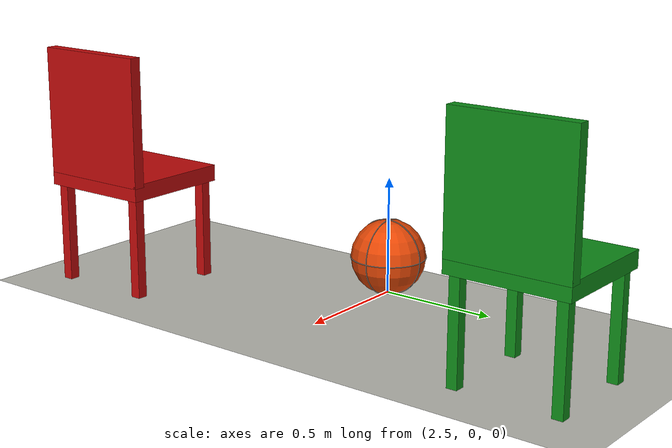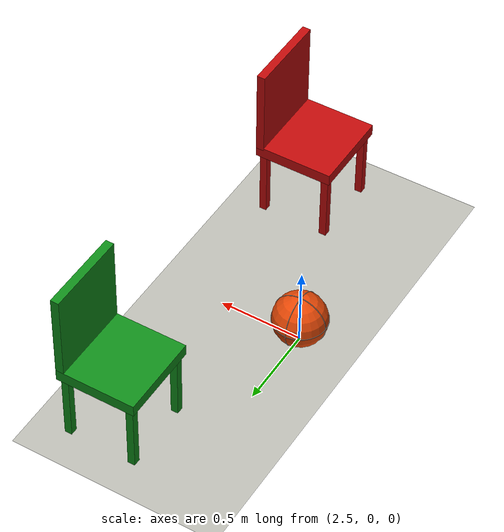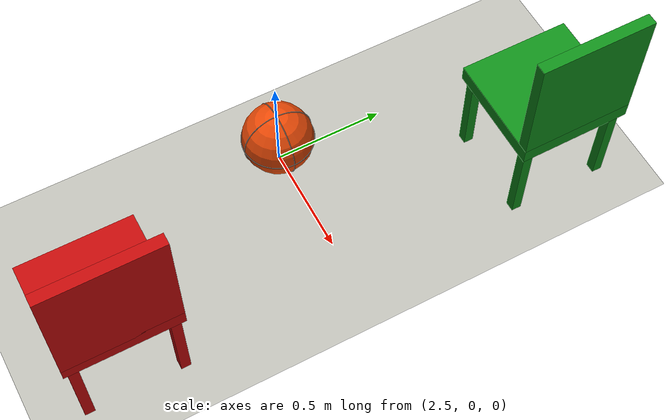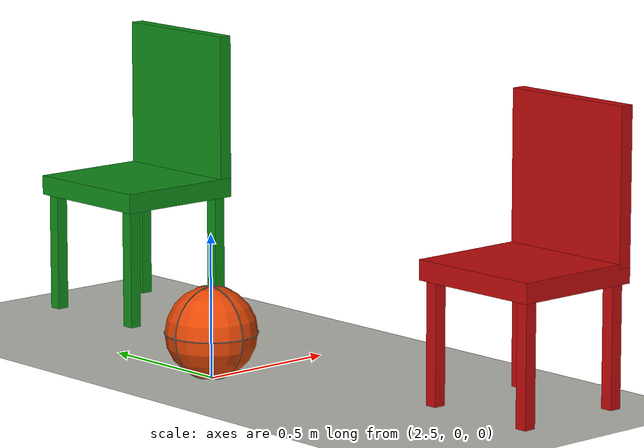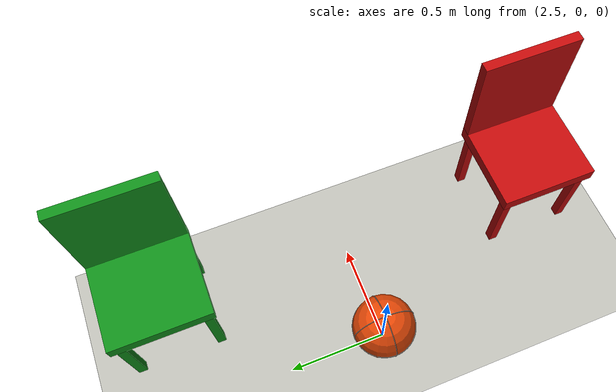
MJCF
<mujoco model="task2_object_lab"><asset><texture name="floor_tex" type="2d" builtin="checker" rgb1=".65 .65 .62" rgb2=".8 .8 .77" width="512" height="512"/><material name="floor_mat" texture="floor_tex" texrepeat="8 8" reflectance=".05"/></asset><worldbody><geom name="floor" type="plane" size="12 12 .1" material="floor_mat"/>
<body name="green_chair" pos="3 1 0" euler="0 0 -90">
<geom name="green_chair_seat" type="box" pos="0 0 .46" size=".25 .24 .035" rgba=".06 .55 .10 1"/>
<geom name="green_chair_back" type="box" pos="0 .215 .75" size=".25 .025 .27" rgba=".06 .55 .10 1"/>
<geom name="green_chair_leg0" type="box" pos="-0.21 -0.2 .22" size=".022 .022 .22" rgba=".06 .55 .10 1"/>
<geom name="green_chair_leg1" type="box" pos="0.21 -0.2 .22" size=".022 .022 .22" rgba=".06 .55 .10 1"/>
<geom name="green_chair_leg2" type="box" pos="-0.21 0.2 .22" size=".022 .022 .22" rgba=".06 .55 .10 1"/>
<geom name="green_chair_leg3" type="box" pos="0.21 0.2 .22" size=".022 .022 .22" rgba=".06 .55 .10 1"/>
</body>
<body name="red_chair" pos="3 -1 0" euler="0 0 -90">
<geom name="red_chair_seat" type="box" pos="0 0 .46" size=".25 .24 .035" rgba=".75 .04 .04 1"/>
<geom name="red_chair_back" type="box" pos="0 .215 .75" size=".25 .025 .27" rgba=".75 .04 .04 1"/>
<geom name="red_chair_leg0" type="box" pos="-0.21 -0.2 .22" size=".022 .022 .22" rgba=".75 .04 .04 1"/>
<geom name="red_chair_leg1" type="box" pos="0.21 -0.2 .22" size=".022 .022 .22" rgba=".75 .04 .04 1"/>
<geom name="red_chair_leg2" type="box" pos="-0.21 0.2 .22" size=".022 .022 .22" rgba=".75 .04 .04 1"/>
<geom name="red_chair_leg3" type="box" pos="0.21 0.2 .22" size=".022 .022 .22" rgba=".75 .04 .04 1"/>
</body>
<body name="orange_ball" pos="2.5 0 .16"><geom name="ball" type="sphere" size=".16" rgba=".9 .28 .025 1"/>
<geom type="capsule" fromto="0.1605 0.0 0 0.1597271486308876 0.015731751022894477 0" size=".002" rgba=".08 .05 .03 1" contype="0" conaffinity="0"/>
<geom type="capsule" fromto="0.1597271486308876 0.015731751022894477 0 0.1574160375047185 0.03131199668358858 0" size=".002" rgba=".08 .05 .03 1" contype="0" conaffinity="0"/>
<geom type="capsule" fromto="0.1574160375047185 0.03131199668358858 0 0.15358892388501952 0.04659069069934121 0" size=".002" rgba=".08 .05 .03 1" contype="0" conaffinity="0"/>
<geom type="capsule" fromto="0.15358892388501952 0.04659069069934121 0 0.14828266496806153 0.06142069089459691 0" size=".002" rgba=".08 .05 .03 1" contype="0" conaffinity="0"/>
<geom type="capsule" fromto="0.14828266496806153 0.06142069089459691 0 0.14154836292791098 0.07565917626057263 0" size=".002" rgba=".08 .05 .03 1" contype="0" conaffinity="0"/>
<geom type="capsule" fromto="0.14154836292791098 0.07565917626057263 0 0.13345087277455853 0.08916902239964615 0" size=".002" rgba=".08 .05 .03 1" contype="0" conaffinity="0"/>
<geom type="capsule" fromto="0.13345087277455853 0.08916902239964615 0 0.12406817776471929 0.1018201221082651 0" size=".002" rgba=".08 .05 .03 1" contype="0" conaffinity="0"/>
<geom type="capsule" fromto="0.12406817776471929 0.1018201221082651 0 0.11349063838044089 0.11349063838044086 0" size=".002" rgba=".08 .05 .03 1" contype="0" conaffinity="0"/>
<geom type="capsule" fromto="0.11349063838044089 0.11349063838044086 0 0.1018201221082651 0.12406817776471929 0" size=".002" rgba=".08 .05 .03 1" contype="0" conaffinity="0"/>
<geom type="capsule" fromto="0.1018201221082651 0.12406817776471929 0 0.08916902239964616 0.13345087277455853 0" size=".002" rgba=".08 .05 .03 1" contype="0" conaffinity="0"/>
<geom type="capsule" fromto="0.08916902239964616 0.13345087277455853 0 0.07565917626057266 0.14154836292791098 0" size=".002" rgba=".08 .05 .03 1" contype="0" conaffinity="0"/>
<geom type="capsule" fromto="0.07565917626057266 0.14154836292791098 0 0.06142069089459692 0.14828266496806153 0" size=".002" rgba=".08 .05 .03 1" contype="0" conaffinity="0"/>
<geom type="capsule" fromto="0.06142069089459692 0.14828266496806153 0 0.04659069069934121 0.15358892388501955 0" size=".002" rgba=".08 .05 .03 1" contype="0" conaffinity="0"/>
<geom type="capsule" fromto="0.04659069069934121 0.15358892388501955 0 0.0313119966835886 0.1574160375047185 0" size=".002" rgba=".08 .05 .03 1" contype="0" conaffinity="0"/>
<geom type="capsule" fromto="0.0313119966835886 0.1574160375047185 0 0.015731751022894504 0.1597271486308876 0" size=".002" rgba=".08 .05 .03 1" contype="0" conaffinity="0"/>
<geom type="capsule" fromto="0.015731751022894504 0.1597271486308876 0 9.82779056315751e-18 0.1605 0" size=".002" rgba=".08 .05 .03 1" contype="0" conaffinity="0"/>
<geom type="capsule" fromto="9.82779056315751e-18 0.1605 0 -0.015731751022894484 0.1597271486308876 0" size=".002" rgba=".08 .05 .03 1" contype="0" conaffinity="0"/>
<geom type="capsule" fromto="-0.015731751022894484 0.1597271486308876 0 -0.031311996683588576 0.1574160375047185 0" size=".002" rgba=".08 .05 .03 1" contype="0" conaffinity="0"/>
<geom type="capsule" fromto="-0.031311996683588576 0.1574160375047185 0 -0.04659069069934118 0.15358892388501955 0" size=".002" rgba=".08 .05 .03 1" contype="0" conaffinity="0"/>
<geom type="capsule" fromto="-0.04659069069934118 0.15358892388501955 0 -0.061420690894596904 0.14828266496806153 0" size=".002" rgba=".08 .05 .03 1" contype="0" conaffinity="0"/>
<geom type="capsule" fromto="-0.061420690894596904 0.14828266496806153 0 -0.07565917626057263 0.14154836292791098 0" size=".002" rgba=".08 .05 .03 1" contype="0" conaffinity="0"/>
<geom type="capsule" fromto="-0.07565917626057263 0.14154836292791098 0 -0.08916902239964612 0.13345087277455855 0" size=".002" rgba=".08 .05 .03 1" contype="0" conaffinity="0"/>
<geom type="capsule" fromto="-0.08916902239964612 0.13345087277455855 0 -0.10182012210826509 0.1240681777647193 0" size=".002" rgba=".08 .05 .03 1" contype="0" conaffinity="0"/>
<geom type="capsule" fromto="-0.10182012210826509 0.1240681777647193 0 -0.11349063838044086 0.11349063838044089 0" size=".002" rgba=".08 .05 .03 1" contype="0" conaffinity="0"/>
<geom type="capsule" fromto="-0.11349063838044086 0.11349063838044089 0 -0.12406817776471929 0.1018201221082651 0" size=".002" rgba=".08 .05 .03 1" contype="0" conaffinity="0"/>
<geom type="capsule" fromto="-0.12406817776471929 0.1018201221082651 0 -0.13345087277455853 0.08916902239964615 0" size=".002" rgba=".08 .05 .03 1" contype="0" conaffinity="0"/>
<geom type="capsule" fromto="-0.13345087277455853 0.08916902239964615 0 -0.14154836292791098 0.07565917626057266 0" size=".002" rgba=".08 .05 .03 1" contype="0" conaffinity="0"/>
<geom type="capsule" fromto="-0.14154836292791098 0.07565917626057266 0 -0.14828266496806153 0.06142069089459693 0" size=".002" rgba=".08 .05 .03 1" contype="0" conaffinity="0"/>
<geom type="capsule" fromto="-0.14828266496806153 0.06142069089459693 0 -0.15358892388501952 0.046590690699341214 0" size=".002" rgba=".08 .05 .03 1" contype="0" conaffinity="0"/>
<geom type="capsule" fromto="-0.15358892388501952 0.046590690699341214 0 -0.1574160375047185 0.031311996683588646 0" size=".002" rgba=".08 .05 .03 1" contype="0" conaffinity="0"/>
<geom type="capsule" fromto="-0.1574160375047185 0.031311996683588646 0 -0.1597271486308876 0.01573175102289451 0" size=".002" rgba=".08 .05 .03 1" contype="0" conaffinity="0"/>
<geom type="capsule" fromto="-0.1597271486308876 0.01573175102289451 0 -0.1605 1.965558112631502e-17 0" size=".002" rgba=".08 .05 .03 1" contype="0" conaffinity="0"/>
<geom type="capsule" fromto="-0.1605 1.965558112631502e-17 0 -0.1597271486308876 -0.015731751022894477 0" size=".002" rgba=".08 .05 .03 1" contype="0" conaffinity="0"/>
<geom type="capsule" fromto="-0.1597271486308876 -0.015731751022894477 0 -0.1574160375047185 -0.031311996683588604 0" size=".002" rgba=".08 .05 .03 1" contype="0" conaffinity="0"/>
<geom type="capsule" fromto="-0.1574160375047185 -0.031311996683588604 0 -0.15358892388501955 -0.04659069069934117 0" size=".002" rgba=".08 .05 .03 1" contype="0" conaffinity="0"/>
<geom type="capsule" fromto="-0.15358892388501955 -0.04659069069934117 0 -0.14828266496806156 -0.0614206908945969 0" size=".002" rgba=".08 .05 .03 1" contype="0" conaffinity="0"/>
<geom type="capsule" fromto="-0.14828266496806156 -0.0614206908945969 0 -0.14154836292791098 -0.07565917626057263 0" size=".002" rgba=".08 .05 .03 1" contype="0" conaffinity="0"/>
<geom type="capsule" fromto="-0.14154836292791098 -0.07565917626057263 0 -0.13345087277455855 -0.08916902239964612 0" size=".002" rgba=".08 .05 .03 1" contype="0" conaffinity="0"/>
<geom type="capsule" fromto="-0.13345087277455855 -0.08916902239964612 0 -0.1240681777647193 -0.10182012210826506 0" size=".002" rgba=".08 .05 .03 1" contype="0" conaffinity="0"/>
<geom type="capsule" fromto="-0.1240681777647193 -0.10182012210826506 0 -0.1134906383804409 -0.11349063838044086 0" size=".002" rgba=".08 .05 .03 1" contype="0" conaffinity="0"/>
<geom type="capsule" fromto="-0.1134906383804409 -0.11349063838044086 0 -0.10182012210826517 -0.12406817776471923 0" size=".002" rgba=".08 .05 .03 1" contype="0" conaffinity="0"/>
<geom type="capsule" fromto="-0.10182012210826517 -0.12406817776471923 0 -0.08916902239964615 -0.13345087277455853 0" size=".002" rgba=".08 .05 .03 1" contype="0" conaffinity="0"/>
<geom type="capsule" fromto="-0.08916902239964615 -0.13345087277455853 0 -0.07565917626057266 -0.14154836292791098 0" size=".002" rgba=".08 .05 .03 1" contype="0" conaffinity="0"/>
<geom type="capsule" fromto="-0.07565917626057266 -0.14154836292791098 0 -0.061420690894597 -0.1482826649680615 0" size=".002" rgba=".08 .05 .03 1" contype="0" conaffinity="0"/>
<geom type="capsule" fromto="-0.061420690894597 -0.1482826649680615 0 -0.04659069069934122 -0.15358892388501952 0" size=".002" rgba=".08 .05 .03 1" contype="0" conaffinity="0"/>
<geom type="capsule" fromto="-0.04659069069934122 -0.15358892388501952 0 -0.03131199668358865 -0.15741603750471847 0" size=".002" rgba=".08 .05 .03 1" contype="0" conaffinity="0"/>
<geom type="capsule" fromto="-0.03131199668358865 -0.15741603750471847 0 -0.015731751022894452 -0.1597271486308876 0" size=".002" rgba=".08 .05 .03 1" contype="0" conaffinity="0"/>
<geom type="capsule" fromto="-0.015731751022894452 -0.1597271486308876 0 -2.948337168947253e-17 -0.1605 0" size=".002" rgba=".08 .05 .03 1" contype="0" conaffinity="0"/>
<geom type="capsule" fromto="-2.948337168947253e-17 -0.1605 0 0.015731751022894393 -0.1597271486308876 0" size=".002" rgba=".08 .05 .03 1" contype="0" conaffinity="0"/>
<geom type="capsule" fromto="0.015731751022894393 -0.1597271486308876 0 0.03131199668358859 -0.1574160375047185 0" size=".002" rgba=".08 .05 .03 1" contype="0" conaffinity="0"/>
<geom type="capsule" fromto="0.03131199668358859 -0.1574160375047185 0 0.04659069069934116 -0.15358892388501955 0" size=".002" rgba=".08 .05 .03 1" contype="0" conaffinity="0"/>
<geom type="capsule" fromto="0.04659069069934116 -0.15358892388501955 0 0.061420690894596945 -0.1482826649680615 0" size=".002" rgba=".08 .05 .03 1" contype="0" conaffinity="0"/>
<geom type="capsule" fromto="0.061420690894596945 -0.1482826649680615 0 0.07565917626057261 -0.14154836292791098 0" size=".002" rgba=".08 .05 .03 1" contype="0" conaffinity="0"/>
<geom type="capsule" fromto="0.07565917626057261 -0.14154836292791098 0 0.0891690223996461 -0.13345087277455855 0" size=".002" rgba=".08 .05 .03 1" contype="0" conaffinity="0"/>
<geom type="capsule" fromto="0.0891690223996461 -0.13345087277455855 0 0.10182012210826512 -0.12406817776471928 0" size=".002" rgba=".08 .05 .03 1" contype="0" conaffinity="0"/>
<geom type="capsule" fromto="0.10182012210826512 -0.12406817776471928 0 0.11349063838044085 -0.1134906383804409 0" size=".002" rgba=".08 .05 .03 1" contype="0" conaffinity="0"/>
<geom type="capsule" fromto="0.11349063838044085 -0.1134906383804409 0 0.12406817776471923 -0.10182012210826517 0" size=".002" rgba=".08 .05 .03 1" contype="0" conaffinity="0"/>
<geom type="capsule" fromto="0.12406817776471923 -0.10182012210826517 0 0.13345087277455853 -0.08916902239964615 0" size=".002" rgba=".08 .05 .03 1" contype="0" conaffinity="0"/>
<geom type="capsule" fromto="0.13345087277455853 -0.08916902239964615 0 0.14154836292791095 -0.07565917626057267 0" size=".002" rgba=".08 .05 .03 1" contype="0" conaffinity="0"/>
<geom type="capsule" fromto="0.14154836292791095 -0.07565917626057267 0 0.1482826649680615 -0.06142069089459701 0" size=".002" rgba=".08 .05 .03 1" contype="0" conaffinity="0"/>
<geom type="capsule" fromto="0.1482826649680615 -0.06142069089459701 0 0.15358892388501952 -0.046590690699341235 0" size=".002" rgba=".08 .05 .03 1" contype="0" conaffinity="0"/>
<geom type="capsule" fromto="0.15358892388501952 -0.046590690699341235 0 0.15741603750471847 -0.03131199668358866 0" size=".002" rgba=".08 .05 .03 1" contype="0" conaffinity="0"/>
<geom type="capsule" fromto="0.15741603750471847 -0.03131199668358866 0 0.1597271486308876 -0.015731751022894463 0" size=".002" rgba=".08 .05 .03 1" contype="0" conaffinity="0"/>
<geom type="capsule" fromto="0.1597271486308876 -0.015731751022894463 0 0.1605 -3.931116225263004e-17 0" size=".002" rgba=".08 .05 .03 1" contype="0" conaffinity="0"/>
<geom type="capsule" fromto="0.0 0 0.1605 0.015731751022894477 0 0.1597271486308876" size=".002" rgba=".08 .05 .03 1" contype="0" conaffinity="0"/>
<geom type="capsule" fromto="0.015731751022894477 0 0.1597271486308876 0.03131199668358858 0 0.1574160375047185" size=".002" rgba=".08 .05 .03 1" contype="0" conaffinity="0"/>
<geom type="capsule" fromto="0.03131199668358858 0 0.1574160375047185 0.04659069069934121 0 0.15358892388501952" size=".002" rgba=".08 .05 .03 1" contype="0" conaffinity="0"/>
<geom type="capsule" fromto="0.04659069069934121 0 0.15358892388501952 0.06142069089459691 0 0.14828266496806153" size=".002" rgba=".08 .05 .03 1" contype="0" conaffinity="0"/>
<geom type="capsule" fromto="0.06142069089459691 0 0.14828266496806153 0.07565917626057263 0 0.14154836292791098" size=".002" rgba=".08 .05 .03 1" contype="0" conaffinity="0"/>
<geom type="capsule" fromto="0.07565917626057263 0 0.14154836292791098 0.08916902239964615 0 0.13345087277455853" size=".002" rgba=".08 .05 .03 1" contype="0" conaffinity="0"/>
<geom type="capsule" fromto="0.08916902239964615 0 0.13345087277455853 0.1018201221082651 0 0.12406817776471929" size=".002" rgba=".08 .05 .03 1" contype="0" conaffinity="0"/>
<geom type="capsule" fromto="0.1018201221082651 0 0.12406817776471929 0.11349063838044086 0 0.11349063838044089" size=".002" rgba=".08 .05 .03 1" contype="0" conaffinity="0"/>
<geom type="capsule" fromto="0.11349063838044086 0 0.11349063838044089 0.12406817776471929 0 0.1018201221082651" size=".002" rgba=".08 .05 .03 1" contype="0" conaffinity="0"/>
<geom type="capsule" fromto="0.12406817776471929 0 0.1018201221082651 0.13345087277455853 0 0.08916902239964616" size=".002" rgba=".08 .05 .03 1" contype="0" conaffinity="0"/>
<geom type="capsule" fromto="0.13345087277455853 0 0.08916902239964616 0.14154836292791098 0 0.07565917626057266" size=".002" rgba=".08 .05 .03 1" contype="0" conaffinity="0"/>
<geom type="capsule" fromto="0.14154836292791098 0 0.07565917626057266 0.14828266496806153 0 0.06142069089459692" size=".002" rgba=".08 .05 .03 1" contype="0" conaffinity="0"/>
<geom type="capsule" fromto="0.14828266496806153 0 0.06142069089459692 0.15358892388501955 0 0.04659069069934121" size=".002" rgba=".08 .05 .03 1" contype="0" conaffinity="0"/>
<geom type="capsule" fromto="0.15358892388501955 0 0.04659069069934121 0.1574160375047185 0 0.0313119966835886" size=".002" rgba=".08 .05 .03 1" contype="0" conaffinity="0"/>
<geom type="capsule" fromto="0.1574160375047185 0 0.0313119966835886 0.1597271486308876 0 0.015731751022894504" size=".002" rgba=".08 .05 .03 1" contype="0" conaffinity="0"/>
<geom type="capsule" fromto="0.1597271486308876 0 0.015731751022894504 0.1605 0 9.82779056315751e-18" size=".002" rgba=".08 .05 .03 1" contype="0" conaffinity="0"/>
<geom type="capsule" fromto="0.1605 0 9.82779056315751e-18 0.1597271486308876 0 -0.015731751022894484" size=".002" rgba=".08 .05 .03 1" contype="0" conaffinity="0"/>
<geom type="capsule" fromto="0.1597271486308876 0 -0.015731751022894484 0.1574160375047185 0 -0.031311996683588576" size=".002" rgba=".08 .05 .03 1" contype="0" conaffinity="0"/>
<geom type="capsule" fromto="0.1574160375047185 0 -0.031311996683588576 0.15358892388501955 0 -0.04659069069934118" size=".002" rgba=".08 .05 .03 1" contype="0" conaffinity="0"/>
<geom type="capsule" fromto="0.15358892388501955 0 -0.04659069069934118 0.14828266496806153 0 -0.061420690894596904" size=".002" rgba=".08 .05 .03 1" contype="0" conaffinity="0"/>
<geom type="capsule" fromto="0.14828266496806153 0 -0.061420690894596904 0.14154836292791098 0 -0.07565917626057263" size=".002" rgba=".08 .05 .03 1" contype="0" conaffinity="0"/>
<geom type="capsule" fromto="0.14154836292791098 0 -0.07565917626057263 0.13345087277455855 0 -0.08916902239964612" size=".002" rgba=".08 .05 .03 1" contype="0" conaffinity="0"/>
<geom type="capsule" fromto="0.13345087277455855 0 -0.08916902239964612 0.1240681777647193 0 -0.10182012210826509" size=".002" rgba=".08 .05 .03 1" contype="0" conaffinity="0"/>
<geom type="capsule" fromto="0.1240681777647193 0 -0.10182012210826509 0.11349063838044089 0 -0.11349063838044086" size=".002" rgba=".08 .05 .03 1" contype="0" conaffinity="0"/>
<geom type="capsule" fromto="0.11349063838044089 0 -0.11349063838044086 0.1018201221082651 0 -0.12406817776471929" size=".002" rgba=".08 .05 .03 1" contype="0" conaffinity="0"/>
<geom type="capsule" fromto="0.1018201221082651 0 -0.12406817776471929 0.08916902239964615 0 -0.13345087277455853" size=".002" rgba=".08 .05 .03 1" contype="0" conaffinity="0"/>
<geom type="capsule" fromto="0.08916902239964615 0 -0.13345087277455853 0.07565917626057266 0 -0.14154836292791098" size=".002" rgba=".08 .05 .03 1" contype="0" conaffinity="0"/>
<geom type="capsule" fromto="0.07565917626057266 0 -0.14154836292791098 0.06142069089459693 0 -0.14828266496806153" size=".002" rgba=".08 .05 .03 1" contype="0" conaffinity="0"/>
<geom type="capsule" fromto="0.06142069089459693 0 -0.14828266496806153 0.046590690699341214 0 -0.15358892388501952" size=".002" rgba=".08 .05 .03 1" contype="0" conaffinity="0"/>
<geom type="capsule" fromto="0.046590690699341214 0 -0.15358892388501952 0.031311996683588646 0 -0.1574160375047185" size=".002" rgba=".08 .05 .03 1" contype="0" conaffinity="0"/>
<geom type="capsule" fromto="0.031311996683588646 0 -0.1574160375047185 0.01573175102289451 0 -0.1597271486308876" size=".002" rgba=".08 .05 .03 1" contype="0" conaffinity="0"/>
<geom type="capsule" fromto="0.01573175102289451 0 -0.1597271486308876 1.965558112631502e-17 0 -0.1605" size=".002" rgba=".08 .05 .03 1" contype="0" conaffinity="0"/>
<geom type="capsule" fromto="1.965558112631502e-17 0 -0.1605 -0.015731751022894477 0 -0.1597271486308876" size=".002" rgba=".08 .05 .03 1" contype="0" conaffinity="0"/>
<geom type="capsule" fromto="-0.015731751022894477 0 -0.1597271486308876 -0.031311996683588604 0 -0.1574160375047185" size=".002" rgba=".08 .05 .03 1" contype="0" conaffinity="0"/>
<geom type="capsule" fromto="-0.031311996683588604 0 -0.1574160375047185 -0.04659069069934117 0 -0.15358892388501955" size=".002" rgba=".08 .05 .03 1" contype="0" conaffinity="0"/>
<geom type="capsule" fromto="-0.04659069069934117 0 -0.15358892388501955 -0.0614206908945969 0 -0.14828266496806156" size=".002" rgba=".08 .05 .03 1" contype="0" conaffinity="0"/>
<geom type="capsule" fromto="-0.0614206908945969 0 -0.14828266496806156 -0.07565917626057263 0 -0.14154836292791098" size=".002" rgba=".08 .05 .03 1" contype="0" conaffinity="0"/>
<geom type="capsule" fromto="-0.07565917626057263 0 -0.14154836292791098 -0.08916902239964612 0 -0.13345087277455855" size=".002" rgba=".08 .05 .03 1" contype="0" conaffinity="0"/>
<geom type="capsule" fromto="-0.08916902239964612 0 -0.13345087277455855 -0.10182012210826506 0 -0.1240681777647193" size=".002" rgba=".08 .05 .03 1" contype="0" conaffinity="0"/>
<geom type="capsule" fromto="-0.10182012210826506 0 -0.1240681777647193 -0.11349063838044086 0 -0.1134906383804409" size=".002" rgba=".08 .05 .03 1" contype="0" conaffinity="0"/>
<geom type="capsule" fromto="-0.11349063838044086 0 -0.1134906383804409 -0.12406817776471923 0 -0.10182012210826517" size=".002" rgba=".08 .05 .03 1" contype="0" conaffinity="0"/>
<geom type="capsule" fromto="-0.12406817776471923 0 -0.10182012210826517 -0.13345087277455853 0 -0.08916902239964615" size=".002" rgba=".08 .05 .03 1" contype="0" conaffinity="0"/>
<geom type="capsule" fromto="-0.13345087277455853 0 -0.08916902239964615 -0.14154836292791098 0 -0.07565917626057266" size=".002" rgba=".08 .05 .03 1" contype="0" conaffinity="0"/>
<geom type="capsule" fromto="-0.14154836292791098 0 -0.07565917626057266 -0.1482826649680615 0 -0.061420690894597" size=".002" rgba=".08 .05 .03 1" contype="0" conaffinity="0"/>
<geom type="capsule" fromto="-0.1482826649680615 0 -0.061420690894597 -0.15358892388501952 0 -0.04659069069934122" size=".002" rgba=".08 .05 .03 1" contype="0" conaffinity="0"/>
<geom type="capsule" fromto="-0.15358892388501952 0 -0.04659069069934122 -0.15741603750471847 0 -0.03131199668358865" size=".002" rgba=".08 .05 .03 1" contype="0" conaffinity="0"/>
<geom type="capsule" fromto="-0.15741603750471847 0 -0.03131199668358865 -0.1597271486308876 0 -0.015731751022894452" size=".002" rgba=".08 .05 .03 1" contype="0" conaffinity="0"/>
<geom type="capsule" fromto="-0.1597271486308876 0 -0.015731751022894452 -0.1605 0 -2.948337168947253e-17" size=".002" rgba=".08 .05 .03 1" contype="0" conaffinity="0"/>
<geom type="capsule" fromto="-0.1605 0 -2.948337168947253e-17 -0.1597271486308876 0 0.015731751022894393" size=".002" rgba=".08 .05 .03 1" contype="0" conaffinity="0"/>
<geom type="capsule" fromto="-0.1597271486308876 0 0.015731751022894393 -0.1574160375047185 0 0.03131199668358859" size=".002" rgba=".08 .05 .03 1" contype="0" conaffinity="0"/>
<geom type="capsule" fromto="-0.1574160375047185 0 0.03131199668358859 -0.15358892388501955 0 0.04659069069934116" size=".002" rgba=".08 .05 .03 1" contype="0" conaffinity="0"/>
<geom type="capsule" fromto="-0.15358892388501955 0 0.04659069069934116 -0.1482826649680615 0 0.061420690894596945" size=".002" rgba=".08 .05 .03 1" contype="0" conaffinity="0"/>
<geom type="capsule" fromto="-0.1482826649680615 0 0.061420690894596945 -0.14154836292791098 0 0.07565917626057261" size=".002" rgba=".08 .05 .03 1" contype="0" conaffinity="0"/>
<geom type="capsule" fromto="-0.14154836292791098 0 0.07565917626057261 -0.13345087277455855 0 0.0891690223996461" size=".002" rgba=".08 .05 .03 1" contype="0" conaffinity="0"/>
<geom type="capsule" fromto="-0.13345087277455855 0 0.0891690223996461 -0.12406817776471928 0 0.10182012210826512" size=".002" rgba=".08 .05 .03 1" contype="0" conaffinity="0"/>
<geom type="capsule" fromto="-0.12406817776471928 0 0.10182012210826512 -0.1134906383804409 0 0.11349063838044085" size=".002" rgba=".08 .05 .03 1" contype="0" conaffinity="0"/>
<geom type="capsule" fromto="-0.1134906383804409 0 0.11349063838044085 -0.10182012210826517 0 0.12406817776471923" size=".002" rgba=".08 .05 .03 1" contype="0" conaffinity="0"/>
<geom type="capsule" fromto="-0.10182012210826517 0 0.12406817776471923 -0.08916902239964615 0 0.13345087277455853" size=".002" rgba=".08 .05 .03 1" contype="0" conaffinity="0"/>
<geom type="capsule" fromto="-0.08916902239964615 0 0.13345087277455853 -0.07565917626057267 0 0.14154836292791095" size=".002" rgba=".08 .05 .03 1" contype="0" conaffinity="0"/>
<geom type="capsule" fromto="-0.07565917626057267 0 0.14154836292791095 -0.06142069089459701 0 0.1482826649680615" size=".002" rgba=".08 .05 .03 1" contype="0" conaffinity="0"/>
<geom type="capsule" fromto="-0.06142069089459701 0 0.1482826649680615 -0.046590690699341235 0 0.15358892388501952" size=".002" rgba=".08 .05 .03 1" contype="0" conaffinity="0"/>
<geom type="capsule" fromto="-0.046590690699341235 0 0.15358892388501952 -0.03131199668358866 0 0.15741603750471847" size=".002" rgba=".08 .05 .03 1" contype="0" conaffinity="0"/>
<geom type="capsule" fromto="-0.03131199668358866 0 0.15741603750471847 -0.015731751022894463 0 0.1597271486308876" size=".002" rgba=".08 .05 .03 1" contype="0" conaffinity="0"/>
<geom type="capsule" fromto="-0.015731751022894463 0 0.1597271486308876 -3.931116225263004e-17 0 0.1605" size=".002" rgba=".08 .05 .03 1" contype="0" conaffinity="0"/>
<geom type="capsule" fromto="0 0.1605 0.0 0 0.1597271486308876 0.015731751022894477" size=".002" rgba=".08 .05 .03 1" contype="0" conaffinity="0"/>
<geom type="capsule" fromto="0 0.1597271486308876 0.015731751022894477 0 0.1574160375047185 0.03131199668358858" size=".002" rgba=".08 .05 .03 1" contype="0" conaffinity="0"/>
<geom type="capsule" fromto="0 0.1574160375047185 0.03131199668358858 0 0.15358892388501952 0.04659069069934121" size=".002" rgba=".08 .05 .03 1" contype="0" conaffinity="0"/>
<geom type="capsule" fromto="0 0.15358892388501952 0.04659069069934121 0 0.14828266496806153 0.06142069089459691" size=".002" rgba=".08 .05 .03 1" contype="0" conaffinity="0"/>
<geom type="capsule" fromto="0 0.14828266496806153 0.06142069089459691 0 0.14154836292791098 0.07565917626057263" size=".002" rgba=".08 .05 .03 1" contype="0" conaffinity="0"/>
<geom type="capsule" fromto="0 0.14154836292791098 0.07565917626057263 0 0.13345087277455853 0.08916902239964615" size=".002" rgba=".08 .05 .03 1" contype="0" conaffinity="0"/>
<geom type="capsule" fromto="0 0.13345087277455853 0.08916902239964615 0 0.12406817776471929 0.1018201221082651" size=".002" rgba=".08 .05 .03 1" contype="0" conaffinity="0"/>
<geom type="capsule" fromto="0 0.12406817776471929 0.1018201221082651 0 0.11349063838044089 0.11349063838044086" size=".002" rgba=".08 .05 .03 1" contype="0" conaffinity="0"/>
<geom type="capsule" fromto="0 0.11349063838044089 0.11349063838044086 0 0.1018201221082651 0.12406817776471929" size=".002" rgba=".08 .05 .03 1" contype="0" conaffinity="0"/>
<geom type="capsule" fromto="0 0.1018201221082651 0.12406817776471929 0 0.08916902239964616 0.13345087277455853" size=".002" rgba=".08 .05 .03 1" contype="0" conaffinity="0"/>
<geom type="capsule" fromto="0 0.08916902239964616 0.13345087277455853 0 0.07565917626057266 0.14154836292791098" size=".002" rgba=".08 .05 .03 1" contype="0" conaffinity="0"/>
<geom type="capsule" fromto="0 0.07565917626057266 0.14154836292791098 0 0.06142069089459692 0.14828266496806153" size=".002" rgba=".08 .05 .03 1" contype="0" conaffinity="0"/>
<geom type="capsule" fromto="0 0.06142069089459692 0.14828266496806153 0 0.04659069069934121 0.15358892388501955" size=".002" rgba=".08 .05 .03 1" contype="0" conaffinity="0"/>
<geom type="capsule" fromto="0 0.04659069069934121 0.15358892388501955 0 0.0313119966835886 0.1574160375047185" size=".002" rgba=".08 .05 .03 1" contype="0" conaffinity="0"/>
<geom type="capsule" fromto="0 0.0313119966835886 0.1574160375047185 0 0.015731751022894504 0.1597271486308876" size=".002" rgba=".08 .05 .03 1" contype="0" conaffinity="0"/>
<geom type="capsule" fromto="0 0.015731751022894504 0.1597271486308876 0 9.82779056315751e-18 0.1605" size=".002" rgba=".08 .05 .03 1" contype="0" conaffinity="0"/>
<geom type="capsule" fromto="0 9.82779056315751e-18 0.1605 0 -0.015731751022894484 0.1597271486308876" size=".002" rgba=".08 .05 .03 1" contype="0" conaffinity="0"/>
<geom type="capsule" fromto="0 -0.015731751022894484 0.1597271486308876 0 -0.031311996683588576 0.1574160375047185" size=".002" rgba=".08 .05 .03 1" contype="0" conaffinity="0"/>
<geom type="capsule" fromto="0 -0.031311996683588576 0.1574160375047185 0 -0.04659069069934118 0.15358892388501955" size=".002" rgba=".08 .05 .03 1" contype="0" conaffinity="0"/>
<geom type="capsule" fromto="0 -0.04659069069934118 0.15358892388501955 0 -0.061420690894596904 0.14828266496806153" size=".002" rgba=".08 .05 .03 1" contype="0" conaffinity="0"/>
<geom type="capsule" fromto="0 -0.061420690894596904 0.14828266496806153 0 -0.07565917626057263 0.14154836292791098" size=".002" rgba=".08 .05 .03 1" contype="0" conaffinity="0"/>
<geom type="capsule" fromto="0 -0.07565917626057263 0.14154836292791098 0 -0.08916902239964612 0.13345087277455855" size=".002" rgba=".08 .05 .03 1" contype="0" conaffinity="0"/>
<geom type="capsule" fromto="0 -0.08916902239964612 0.13345087277455855 0 -0.10182012210826509 0.1240681777647193" size=".002" rgba=".08 .05 .03 1" contype="0" conaffinity="0"/>
<geom type="capsule" fromto="0 -0.10182012210826509 0.1240681777647193 0 -0.11349063838044086 0.11349063838044089" size=".002" rgba=".08 .05 .03 1" contype="0" conaffinity="0"/>
<geom type="capsule" fromto="0 -0.11349063838044086 0.11349063838044089 0 -0.12406817776471929 0.1018201221082651" size=".002" rgba=".08 .05 .03 1" contype="0" conaffinity="0"/>
<geom type="capsule" fromto="0 -0.12406817776471929 0.1018201221082651 0 -0.13345087277455853 0.08916902239964615" size=".002" rgba=".08 .05 .03 1" contype="0" conaffinity="0"/>
<geom type="capsule" fromto="0 -0.13345087277455853 0.08916902239964615 0 -0.14154836292791098 0.07565917626057266" size=".002" rgba=".08 .05 .03 1" contype="0" conaffinity="0"/>
<geom type="capsule" fromto="0 -0.14154836292791098 0.07565917626057266 0 -0.14828266496806153 0.06142069089459693" size=".002" rgba=".08 .05 .03 1" contype="0" conaffinity="0"/>
<geom type="capsule" fromto="0 -0.14828266496806153 0.06142069089459693 0 -0.15358892388501952 0.046590690699341214" size=".002" rgba=".08 .05 .03 1" contype="0" conaffinity="0"/>
<geom type="capsule" fromto="0 -0.15358892388501952 0.046590690699341214 0 -0.1574160375047185 0.031311996683588646" size=".002" rgba=".08 .05 .03 1" contype="0" conaffinity="0"/>
<geom type="capsule" fromto="0 -0.1574160375047185 0.031311996683588646 0 -0.1597271486308876 0.01573175102289451" size=".002" rgba=".08 .05 .03 1" contype="0" conaffinity="0"/>
<geom type="capsule" fromto="0 -0.1597271486308876 0.01573175102289451 0 -0.1605 1.965558112631502e-17" size=".002" rgba=".08 .05 .03 1" contype="0" conaffinity="0"/>
<geom type="capsule" fromto="0 -0.1605 1.965558112631502e-17 0 -0.1597271486308876 -0.015731751022894477" size=".002" rgba=".08 .05 .03 1" contype="0" conaffinity="0"/>
<geom type="capsule" fromto="0 -0.1597271486308876 -0.015731751022894477 0 -0.1574160375047185 -0.031311996683588604" size=".002" rgba=".08 .05 .03 1" contype="0" conaffinity="0"/>
<geom type="capsule" fromto="0 -0.1574160375047185 -0.031311996683588604 0 -0.15358892388501955 -0.04659069069934117" size=".002" rgba=".08 .05 .03 1" contype="0" conaffinity="0"/>
<geom type="capsule" fromto="0 -0.15358892388501955 -0.04659069069934117 0 -0.14828266496806156 -0.0614206908945969" size=".002" rgba=".08 .05 .03 1" contype="0" conaffinity="0"/>
<geom type="capsule" fromto="0 -0.14828266496806156 -0.0614206908945969 0 -0.14154836292791098 -0.07565917626057263" size=".002" rgba=".08 .05 .03 1" contype="0" conaffinity="0"/>
<geom type="capsule" fromto="0 -0.14154836292791098 -0.07565917626057263 0 -0.13345087277455855 -0.08916902239964612" size=".002" rgba=".08 .05 .03 1" contype="0" conaffinity="0"/>
<geom type="capsule" fromto="0 -0.13345087277455855 -0.08916902239964612 0 -0.1240681777647193 -0.10182012210826506" size=".002" rgba=".08 .05 .03 1" contype="0" conaffinity="0"/>
<geom type="capsule" fromto="0 -0.1240681777647193 -0.10182012210826506 0 -0.1134906383804409 -0.11349063838044086" size=".002" rgba=".08 .05 .03 1" contype="0" conaffinity="0"/>
<geom type="capsule" fromto="0 -0.1134906383804409 -0.11349063838044086 0 -0.10182012210826517 -0.12406817776471923" size=".002" rgba=".08 .05 .03 1" contype="0" conaffinity="0"/>
<geom type="capsule" fromto="0 -0.10182012210826517 -0.12406817776471923 0 -0.08916902239964615 -0.13345087277455853" size=".002" rgba=".08 .05 .03 1" contype="0" conaffinity="0"/>
<geom type="capsule" fromto="0 -0.08916902239964615 -0.13345087277455853 0 -0.07565917626057266 -0.14154836292791098" size=".002" rgba=".08 .05 .03 1" contype="0" conaffinity="0"/>
<geom type="capsule" fromto="0 -0.07565917626057266 -0.14154836292791098 0 -0.061420690894597 -0.1482826649680615" size=".002" rgba=".08 .05 .03 1" contype="0" conaffinity="0"/>
<geom type="capsule" fromto="0 -0.061420690894597 -0.1482826649680615 0 -0.04659069069934122 -0.15358892388501952" size=".002" rgba=".08 .05 .03 1" contype="0" conaffinity="0"/>
<geom type="capsule" fromto="0 -0.04659069069934122 -0.15358892388501952 0 -0.03131199668358865 -0.15741603750471847" size=".002" rgba=".08 .05 .03 1" contype="0" conaffinity="0"/>
<geom type="capsule" fromto="0 -0.03131199668358865 -0.15741603750471847 0 -0.015731751022894452 -0.1597271486308876" size=".002" rgba=".08 .05 .03 1" contype="0" conaffinity="0"/>
<geom type="capsule" fromto="0 -0.015731751022894452 -0.1597271486308876 0 -2.948337168947253e-17 -0.1605" size=".002" rgba=".08 .05 .03 1" contype="0" conaffinity="0"/>
<geom type="capsule" fromto="0 -2.948337168947253e-17 -0.1605 0 0.015731751022894393 -0.1597271486308876" size=".002" rgba=".08 .05 .03 1" contype="0" conaffinity="0"/>
<geom type="capsule" fromto="0 0.015731751022894393 -0.1597271486308876 0 0.03131199668358859 -0.1574160375047185" size=".002" rgba=".08 .05 .03 1" contype="0" conaffinity="0"/>
<geom type="capsule" fromto="0 0.03131199668358859 -0.1574160375047185 0 0.04659069069934116 -0.15358892388501955" size=".002" rgba=".08 .05 .03 1" contype="0" conaffinity="0"/>
<geom type="capsule" fromto="0 0.04659069069934116 -0.15358892388501955 0 0.061420690894596945 -0.1482826649680615" size=".002" rgba=".08 .05 .03 1" contype="0" conaffinity="0"/>
<geom type="capsule" fromto="0 0.061420690894596945 -0.1482826649680615 0 0.07565917626057261 -0.14154836292791098" size=".002" rgba=".08 .05 .03 1" contype="0" conaffinity="0"/>
<geom type="capsule" fromto="0 0.07565917626057261 -0.14154836292791098 0 0.0891690223996461 -0.13345087277455855" size=".002" rgba=".08 .05 .03 1" contype="0" conaffinity="0"/>
<geom type="capsule" fromto="0 0.0891690223996461 -0.13345087277455855 0 0.10182012210826512 -0.12406817776471928" size=".002" rgba=".08 .05 .03 1" contype="0" conaffinity="0"/>
<geom type="capsule" fromto="0 0.10182012210826512 -0.12406817776471928 0 0.11349063838044085 -0.1134906383804409" size=".002" rgba=".08 .05 .03 1" contype="0" conaffinity="0"/>
<geom type="capsule" fromto="0 0.11349063838044085 -0.1134906383804409 0 0.12406817776471923 -0.10182012210826517" size=".002" rgba=".08 .05 .03 1" contype="0" conaffinity="0"/>
<geom type="capsule" fromto="0 0.12406817776471923 -0.10182012210826517 0 0.13345087277455853 -0.08916902239964615" size=".002" rgba=".08 .05 .03 1" contype="0" conaffinity="0"/>
<geom type="capsule" fromto="0 0.13345087277455853 -0.08916902239964615 0 0.14154836292791095 -0.07565917626057267" size=".002" rgba=".08 .05 .03 1" contype="0" conaffinity="0"/>
<geom type="capsule" fromto="0 0.14154836292791095 -0.07565917626057267 0 0.1482826649680615 -0.06142069089459701" size=".002" rgba=".08 .05 .03 1" contype="0" conaffinity="0"/>
<geom type="capsule" fromto="0 0.1482826649680615 -0.06142069089459701 0 0.15358892388501952 -0.046590690699341235" size=".002" rgba=".08 .05 .03 1" contype="0" conaffinity="0"/>
<geom type="capsule" fromto="0 0.15358892388501952 -0.046590690699341235 0 0.15741603750471847 -0.03131199668358866" size=".002" rgba=".08 .05 .03 1" contype="0" conaffinity="0"/>
<geom type="capsule" fromto="0 0.15741603750471847 -0.03131199668358866 0 0.1597271486308876 -0.015731751022894463" size=".002" rgba=".08 .05 .03 1" contype="0" conaffinity="0"/>
<geom type="capsule" fromto="0 0.1597271486308876 -0.015731751022894463 0 0.1605 -3.931116225263004e-17" size=".002" rgba=".08 .05 .03 1" contype="0" conaffinity="0"/>
</body></worldbody></mujoco>
